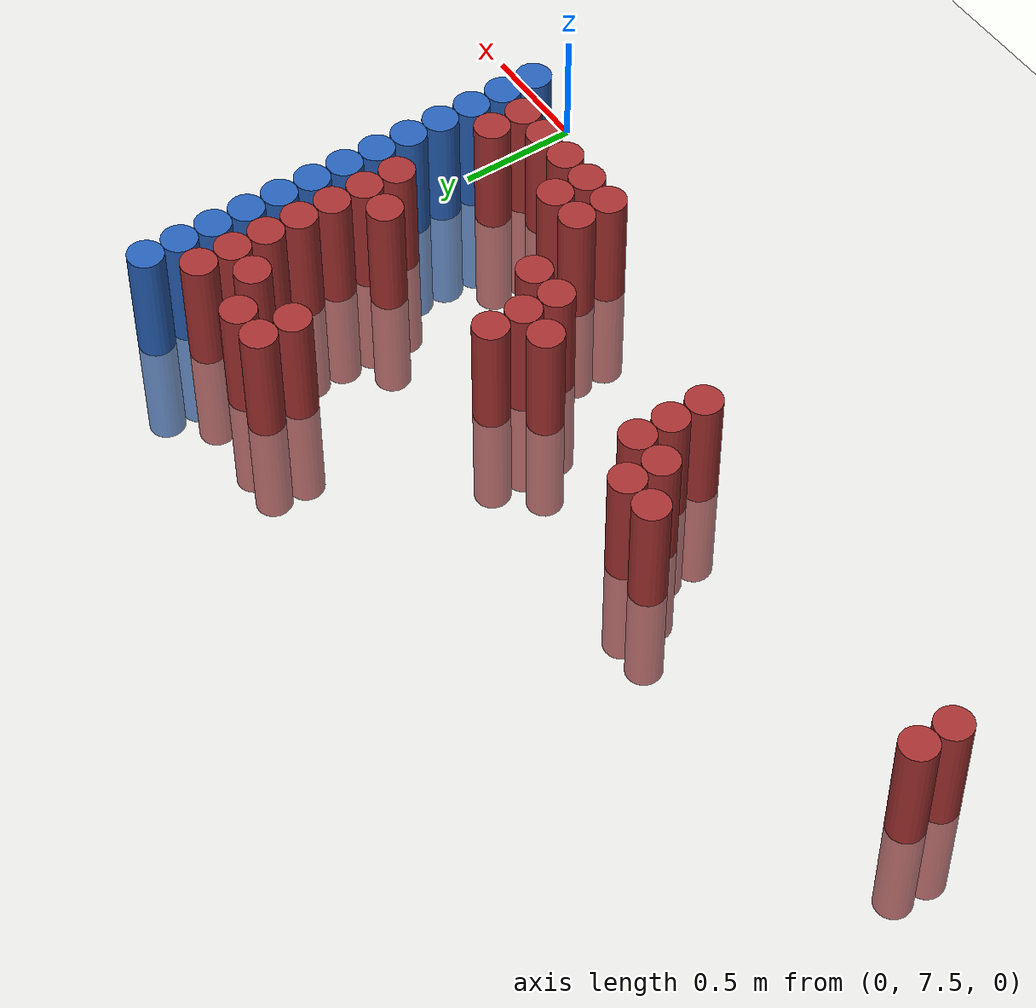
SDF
<sdf version="1.6">
 <world name="default">
  <model name="ground_plane">
   <static>1</static>
   <link name="link">
    <collision name="collision">
     <geometry><plane><normal>0 0 1</normal><size>100 100</size></plane></geometry>
     <surface><friction><ode><mu>100</mu><mu2>50</mu2></ode></friction></surface>
    </collision>
    <visual name="visual">
     <cast_shadows>0</cast_shadows>
     <geometry><plane><normal>0 0 1</normal><size>100 100</size></plane></geometry>
     <material>
      <script><uri>file://media/materials/scripts/gazebo.material</uri><name>Gazebo/Grey</name></script>
     </material>
    </visual>
   </link>
  </model>
  <model name="unit_cylinder_159">
   <static>1</static>
   <pose>-3.525000 8.325000 0.000000 0.000000 0.000000 0.000000</pose>
   <link name="link">
    <inertial>
     <mass>1</mass>
     <inertia><ixx>0.145833</ixx><ixy>0</ixy><ixz>0</ixz><iyy>0.145833</iyy><iyz>0</iyz><izz>0.125</izz></inertia>
    </inertial>
    <collision name="collision">
     <geometry><cylinder><radius>0.075000</radius><length>1</length></cylinder></geometry>
    </collision>
    <visual name="visual">
     <geometry><cylinder><radius>0.075000</radius><length>1</length></cylinder></geometry>
     <material>
      <ambient>0.648000 0.192000 0.192000 1</ambient>
      <diffuse>0.648000 0.192000 0.192000 1</diffuse>
     </material>
     <material>
      <script><name>Gazebo/Grey</name><uri>file://media/materials/scripts/gazebo.material</uri></script>
     </material>
    </visual>
   </link>
  </model>
  <model name="unit_cylinder_160">
   <static>1</static>
   <pose>-3.525000 8.475000 0.000000 0.000000 0.000000 0.000000</pose>
   <link name="link">
    <inertial>
     <mass>1</mass>
     <inertia><ixx>0.145833</ixx><ixy>0</ixy><ixz>0</ixz><iyy>0.145833</iyy><iyz>0</iyz><izz>0.125</izz></inertia>
    </inertial>
    <collision name="collision">
     <geometry><cylinder><radius>0.075000</radius><length>1</length></cylinder></geometry>
    </collision>
    <visual name="visual">
     <geometry><cylinder><radius>0.075000</radius><length>1</length></cylinder></geometry>
     <material>
      <ambient>0.648000 0.192000 0.192000 1</ambient>
      <diffuse>0.648000 0.192000 0.192000 1</diffuse>
     </material>
     <material>
      <script><name>Gazebo/Grey</name><uri>file://media/materials/scripts/gazebo.material</uri></script>
     </material>
    </visual>
   </link>
  </model>
  <model name="unit_cylinder_171">
   <static>1</static>
   <pose>-2.175000 8.625000 0.000000 0.000000 0.000000 0.000000</pose>
   <link name="link">
    <inertial>
     <mass>1</mass>
     <inertia><ixx>0.145833</ixx><ixy>0</ixy><ixz>0</ixz><iyy>0.145833</iyy><iyz>0</iyz><izz>0.125</izz></inertia>
    </inertial>
    <collision name="collision">
     <geometry><cylinder><radius>0.075000</radius><length>1</length></cylinder></geometry>
    </collision>
    <visual name="visual">
     <geometry><cylinder><radius>0.075000</radius><length>1</length></cylinder></geometry>
     <material>
      <ambient>0.648000 0.192000 0.192000 1</ambient>
      <diffuse>0.648000 0.192000 0.192000 1</diffuse>
     </material>
     <material>
      <script><name>Gazebo/Grey</name><uri>file://media/materials/scripts/gazebo.material</uri></script>
     </material>
    </visual>
   </link>
  </model>
  <model name="unit_cylinder_172">
   <static>1</static>
   <pose>-2.025000 8.475000 0.000000 0.000000 0.000000 0.000000</pose>
   <link name="link">
    <inertial>
     <mass>1</mass>
     <inertia><ixx>0.145833</ixx><ixy>0</ixy><ixz>0</ixz><iyy>0.145833</iyy><iyz>0</iyz><izz>0.125</izz></inertia>
    </inertial>
    <collision name="collision">
     <geometry><cylinder><radius>0.075000</radius><length>1</length></cylinder></geometry>
    </collision>
    <visual name="visual">
     <geometry><cylinder><radius>0.075000</radius><length>1</length></cylinder></geometry>
     <material>
      <ambient>0.648000 0.192000 0.192000 1</ambient>
      <diffuse>0.648000 0.192000 0.192000 1</diffuse>
     </material>
     <material>
      <script><name>Gazebo/Grey</name><uri>file://media/materials/scripts/gazebo.material</uri></script>
     </material>
    </visual>
   </link>
  </model>
  <model name="unit_cylinder_173">
   <static>1</static>
   <pose>-2.025000 8.625000 0.000000 0.000000 0.000000 0.000000</pose>
   <link name="link">
    <inertial>
     <mass>1</mass>
     <inertia><ixx>0.145833</ixx><ixy>0</ixy><ixz>0</ixz><iyy>0.145833</iyy><iyz>0</iyz><izz>0.125</izz></inertia>
    </inertial>
    <collision name="collision">
     <geometry><cylinder><radius>0.075000</radius><length>1</length></cylinder></geometry>
    </collision>
    <visual name="visual">
     <geometry><cylinder><radius>0.075000</radius><length>1</length></cylinder></geometry>
     <material>
      <ambient>0.648000 0.192000 0.192000 1</ambient>
      <diffuse>0.648000 0.192000 0.192000 1</diffuse>
     </material>
     <material>
      <script><name>Gazebo/Grey</name><uri>file://media/materials/scripts/gazebo.material</uri></script>
     </material>
    </visual>
   </link>
  </model>
  <model name="unit_cylinder_174">
   <static>1</static>
   <pose>-1.875000 8.175000 0.000000 0.000000 0.000000 0.000000</pose>
   <link name="link">
    <inertial>
     <mass>1</mass>
     <inertia><ixx>0.145833</ixx><ixy>0</ixy><ixz>0</ixz><iyy>0.145833</iyy><iyz>0</iyz><izz>0.125</izz></inertia>
    </inertial>
    <collision name="collision">
     <geometry><cylinder><radius>0.075000</radius><length>1</length></cylinder></geometry>
    </collision>
    <visual name="visual">
     <geometry><cylinder><radius>0.075000</radius><length>1</length></cylinder></geometry>
     <material>
      <ambient>0.648000 0.192000 0.192000 1</ambient>
      <diffuse>0.648000 0.192000 0.192000 1</diffuse>
     </material>
     <material>
      <script><name>Gazebo/Grey</name><uri>file://media/materials/scripts/gazebo.material</uri></script>
     </material>
    </visual>
   </link>
  </model>
  <model name="unit_cylinder_175">
   <static>1</static>
   <pose>-1.875000 8.325000 0.000000 0.000000 0.000000 0.000000</pose>
   <link name="link">
    <inertial>
     <mass>1</mass>
     <inertia><ixx>0.145833</ixx><ixy>0</ixy><ixz>0</ixz><iyy>0.145833</iyy><iyz>0</iyz><izz>0.125</izz></inertia>
    </inertial>
    <collision name="collision">
     <geometry><cylinder><radius>0.075000</radius><length>1</length></cylinder></geometry>
    </collision>
    <visual name="visual">
     <geometry><cylinder><radius>0.075000</radius><length>1</length></cylinder></geometry>
     <material>
      <ambient>0.648000 0.192000 0.192000 1</ambient>
      <diffuse>0.648000 0.192000 0.192000 1</diffuse>
     </material>
     <material>
      <script><name>Gazebo/Grey</name><uri>file://media/materials/scripts/gazebo.material</uri></script>
     </material>
    </visual>
   </link>
  </model>
  <model name="unit_cylinder_176">
   <static>1</static>
   <pose>-1.875000 8.475000 0.000000 0.000000 0.000000 0.000000</pose>
   <link name="link">
    <inertial>
     <mass>1</mass>
     <inertia><ixx>0.145833</ixx><ixy>0</ixy><ixz>0</ixz><iyy>0.145833</iyy><iyz>0</iyz><izz>0.125</izz></inertia>
    </inertial>
    <collision name="collision">
     <geometry><cylinder><radius>0.075000</radius><length>1</length></cylinder></geometry>
    </collision>
    <visual name="visual">
     <geometry><cylinder><radius>0.075000</radius><length>1</length></cylinder></geometry>
     <material>
      <ambient>0.648000 0.192000 0.192000 1</ambient>
      <diffuse>0.648000 0.192000 0.192000 1</diffuse>
     </material>
     <material>
      <script><name>Gazebo/Grey</name><uri>file://media/materials/scripts/gazebo.material</uri></script>
     </material>
    </visual>
   </link>
  </model>
  <model name="unit_cylinder_195">
   <static>1</static>
   <pose>-1.275000 8.475000 0.000000 0.000000 0.000000 0.000000</pose>
   <link name="link">
    <inertial>
     <mass>1</mass>
     <inertia><ixx>0.145833</ixx><ixy>0</ixy><ixz>0</ixz><iyy>0.145833</iyy><iyz>0</iyz><izz>0.125</izz></inertia>
    </inertial>
    <collision name="collision">
     <geometry><cylinder><radius>0.075000</radius><length>1</length></cylinder></geometry>
    </collision>
    <visual name="visual">
     <geometry><cylinder><radius>0.075000</radius><length>1</length></cylinder></geometry>
     <material>
      <ambient>0.648000 0.192000 0.192000 1</ambient>
      <diffuse>0.648000 0.192000 0.192000 1</diffuse>
     </material>
     <material>
      <script><name>Gazebo/Grey</name><uri>file://media/materials/scripts/gazebo.material</uri></script>
     </material>
    </visual>
   </link>
  </model>
  <model name="unit_cylinder_196">
   <static>1</static>
   <pose>-1.125000 8.325000 0.000000 0.000000 0.000000 0.000000</pose>
   <link name="link">
    <inertial>
     <mass>1</mass>
     <inertia><ixx>0.145833</ixx><ixy>0</ixy><ixz>0</ixz><iyy>0.145833</iyy><iyz>0</iyz><izz>0.125</izz></inertia>
    </inertial>
    <collision name="collision">
     <geometry><cylinder><radius>0.075000</radius><length>1</length></cylinder></geometry>
    </collision>
    <visual name="visual">
     <geometry><cylinder><radius>0.075000</radius><length>1</length></cylinder></geometry>
     <material>
      <ambient>0.648000 0.192000 0.192000 1</ambient>
      <diffuse>0.648000 0.192000 0.192000 1</diffuse>
     </material>
     <material>
      <script><name>Gazebo/Grey</name><uri>file://media/materials/scripts/gazebo.material</uri></script>
     </material>
    </visual>
   </link>
  </model>
  <model name="unit_cylinder_197">
   <static>1</static>
   <pose>-1.125000 8.475000 0.000000 0.000000 0.000000 0.000000</pose>
   <link name="link">
    <inertial>
     <mass>1</mass>
     <inertia><ixx>0.145833</ixx><ixy>0</ixy><ixz>0</ixz><iyy>0.145833</iyy><iyz>0</iyz><izz>0.125</izz></inertia>
    </inertial>
    <collision name="collision">
     <geometry><cylinder><radius>0.075000</radius><length>1</length></cylinder></geometry>
    </collision>
    <visual name="visual">
     <geometry><cylinder><radius>0.075000</radius><length>1</length></cylinder></geometry>
     <material>
      <ambient>0.648000 0.192000 0.192000 1</ambient>
      <diffuse>0.648000 0.192000 0.192000 1</diffuse>
     </material>
     <material>
      <script><name>Gazebo/Grey</name><uri>file://media/materials/scripts/gazebo.material</uri></script>
     </material>
    </visual>
   </link>
  </model>
  <model name="unit_cylinder_198">
   <static>1</static>
   <pose>-1.125000 8.625000 0.000000 0.000000 0.000000 0.000000</pose>
   <link name="link">
    <inertial>
     <mass>1</mass>
     <inertia><ixx>0.145833</ixx><ixy>0</ixy><ixz>0</ixz><iyy>0.145833</iyy><iyz>0</iyz><izz>0.125</izz></inertia>
    </inertial>
    <collision name="collision">
     <geometry><cylinder><radius>0.075000</radius><length>1</length></cylinder></geometry>
    </collision>
    <visual name="visual">
     <geometry><cylinder><radius>0.075000</radius><length>1</length></cylinder></geometry>
     <material>
      <ambient>0.648000 0.192000 0.192000 1</ambient>
      <diffuse>0.648000 0.192000 0.192000 1</diffuse>
     </material>
     <material>
      <script><name>Gazebo/Grey</name><uri>file://media/materials/scripts/gazebo.material</uri></script>
     </material>
    </visual>
   </link>
  </model>
  <model name="unit_cylinder_201">
   <static>1</static>
   <pose>-0.975000 8.325000 0.000000 0.000000 0.000000 0.000000</pose>
   <link name="link">
    <inertial>
     <mass>1</mass>
     <inertia><ixx>0.145833</ixx><ixy>0</ixy><ixz>0</ixz><iyy>0.145833</iyy><iyz>0</iyz><izz>0.125</izz></inertia>
    </inertial>
    <collision name="collision">
     <geometry><cylinder><radius>0.075000</radius><length>1</length></cylinder></geometry>
    </collision>
    <visual name="visual">
     <geometry><cylinder><radius>0.075000</radius><length>1</length></cylinder></geometry>
     <material>
      <ambient>0.648000 0.192000 0.192000 1</ambient>
      <diffuse>0.648000 0.192000 0.192000 1</diffuse>
     </material>
     <material>
      <script><name>Gazebo/Grey</name><uri>file://media/materials/scripts/gazebo.material</uri></script>
     </material>
    </visual>
   </link>
  </model>
  <model name="unit_cylinder_204">
   <static>1</static>
   <pose>-0.825000 7.875000 0.000000 0.000000 0.000000 0.000000</pose>
   <link name="link">
    <inertial>
     <mass>1</mass>
     <inertia><ixx>0.145833</ixx><ixy>0</ixy><ixz>0</ixz><iyy>0.145833</iyy><iyz>0</iyz><izz>0.125</izz></inertia>
    </inertial>
    <collision name="collision">
     <geometry><cylinder><radius>0.075000</radius><length>1</length></cylinder></geometry>
    </collision>
    <visual name="visual">
     <geometry><cylinder><radius>0.075000</radius><length>1</length></cylinder></geometry>
     <material>
      <ambient>0.648000 0.192000 0.192000 1</ambient>
      <diffuse>0.648000 0.192000 0.192000 1</diffuse>
     </material>
     <material>
      <script><name>Gazebo/Grey</name><uri>file://media/materials/scripts/gazebo.material</uri></script>
     </material>
    </visual>
   </link>
  </model>
  <model name="unit_cylinder_205">
   <static>1</static>
   <pose>-0.825000 8.025000 0.000000 0.000000 0.000000 0.000000</pose>
   <link name="link">
    <inertial>
     <mass>1</mass>
     <inertia><ixx>0.145833</ixx><ixy>0</ixy><ixz>0</ixz><iyy>0.145833</iyy><iyz>0</iyz><izz>0.125</izz></inertia>
    </inertial>
    <collision name="collision">
     <geometry><cylinder><radius>0.075000</radius><length>1</length></cylinder></geometry>
    </collision>
    <visual name="visual">
     <geometry><cylinder><radius>0.075000</radius><length>1</length></cylinder></geometry>
     <material>
      <ambient>0.648000 0.192000 0.192000 1</ambient>
      <diffuse>0.648000 0.192000 0.192000 1</diffuse>
     </material>
     <material>
      <script><name>Gazebo/Grey</name><uri>file://media/materials/scripts/gazebo.material</uri></script>
     </material>
    </visual>
   </link>
  </model>
  <model name="unit_cylinder_209">
   <static>1</static>
   <pose>-0.675000 7.875000 0.000000 0.000000 0.000000 0.000000</pose>
   <link name="link">
    <inertial>
     <mass>1</mass>
     <inertia><ixx>0.145833</ixx><ixy>0</ixy><ixz>0</ixz><iyy>0.145833</iyy><iyz>0</iyz><izz>0.125</izz></inertia>
    </inertial>
    <collision name="collision">
     <geometry><cylinder><radius>0.075000</radius><length>1</length></cylinder></geometry>
    </collision>
    <visual name="visual">
     <geometry><cylinder><radius>0.075000</radius><length>1</length></cylinder></geometry>
     <material>
      <ambient>0.648000 0.192000 0.192000 1</ambient>
      <diffuse>0.648000 0.192000 0.192000 1</diffuse>
     </material>
     <material>
      <script><name>Gazebo/Grey</name><uri>file://media/materials/scripts/gazebo.material</uri></script>
     </material>
    </visual>
   </link>
  </model>
  <model name="unit_cylinder_210">
   <static>1</static>
   <pose>-0.675000 8.025000 0.000000 0.000000 0.000000 0.000000</pose>
   <link name="link">
    <inertial>
     <mass>1</mass>
     <inertia><ixx>0.145833</ixx><ixy>0</ixy><ixz>0</ixz><iyy>0.145833</iyy><iyz>0</iyz><izz>0.125</izz></inertia>
    </inertial>
    <collision name="collision">
     <geometry><cylinder><radius>0.075000</radius><length>1</length></cylinder></geometry>
    </collision>
    <visual name="visual">
     <geometry><cylinder><radius>0.075000</radius><length>1</length></cylinder></geometry>
     <material>
      <ambient>0.648000 0.192000 0.192000 1</ambient>
      <diffuse>0.648000 0.192000 0.192000 1</diffuse>
     </material>
     <material>
      <script><name>Gazebo/Grey</name><uri>file://media/materials/scripts/gazebo.material</uri></script>
     </material>
    </visual>
   </link>
  </model>
  <model name="unit_cylinder_211">
   <static>1</static>
   <pose>-0.675000 9.225000 0.000000 0.000000 0.000000 0.000000</pose>
   <link name="link">
    <inertial>
     <mass>1</mass>
     <inertia><ixx>0.145833</ixx><ixy>0</ixy><ixz>0</ixz><iyy>0.145833</iyy><iyz>0</iyz><izz>0.125</izz></inertia>
    </inertial>
    <collision name="collision">
     <geometry><cylinder><radius>0.075000</radius><length>1</length></cylinder></geometry>
    </collision>
    <visual name="visual">
     <geometry><cylinder><radius>0.075000</radius><length>1</length></cylinder></geometry>
     <material>
      <ambient>0.648000 0.192000 0.192000 1</ambient>
      <diffuse>0.648000 0.192000 0.192000 1</diffuse>
     </material>
     <material>
      <script><name>Gazebo/Grey</name><uri>file://media/materials/scripts/gazebo.material</uri></script>
     </material>
    </visual>
   </link>
  </model>
  <model name="unit_cylinder_212">
   <static>1</static>
   <pose>-0.675000 9.375000 0.000000 0.000000 0.000000 0.000000</pose>
   <link name="link">
    <inertial>
     <mass>1</mass>
     <inertia><ixx>0.145833</ixx><ixy>0</ixy><ixz>0</ixz><iyy>0.145833</iyy><iyz>0</iyz><izz>0.125</izz></inertia>
    </inertial>
    <collision name="collision">
     <geometry><cylinder><radius>0.075000</radius><length>1</length></cylinder></geometry>
    </collision>
    <visual name="visual">
     <geometry><cylinder><radius>0.075000</radius><length>1</length></cylinder></geometry>
     <material>
      <ambient>0.648000 0.192000 0.192000 1</ambient>
      <diffuse>0.648000 0.192000 0.192000 1</diffuse>
     </material>
     <material>
      <script><name>Gazebo/Grey</name><uri>file://media/materials/scripts/gazebo.material</uri></script>
     </material>
    </visual>
   </link>
  </model>
  <model name="unit_cylinder_217">
   <static>1</static>
   <pose>-0.525000 7.875000 0.000000 0.000000 0.000000 0.000000</pose>
   <link name="link">
    <inertial>
     <mass>1</mass>
     <inertia><ixx>0.145833</ixx><ixy>0</ixy><ixz>0</ixz><iyy>0.145833</iyy><iyz>0</iyz><izz>0.125</izz></inertia>
    </inertial>
    <collision name="collision">
     <geometry><cylinder><radius>0.075000</radius><length>1</length></cylinder></geometry>
    </collision>
    <visual name="visual">
     <geometry><cylinder><radius>0.075000</radius><length>1</length></cylinder></geometry>
     <material>
      <ambient>0.648000 0.192000 0.192000 1</ambient>
      <diffuse>0.648000 0.192000 0.192000 1</diffuse>
     </material>
     <material>
      <script><name>Gazebo/Grey</name><uri>file://media/materials/scripts/gazebo.material</uri></script>
     </material>
    </visual>
   </link>
  </model>
  <model name="unit_cylinder_218">
   <static>1</static>
   <pose>-0.525000 9.375000 0.000000 0.000000 0.000000 0.000000</pose>
   <link name="link">
    <inertial>
     <mass>1</mass>
     <inertia><ixx>0.145833</ixx><ixy>0</ixy><ixz>0</ixz><iyy>0.145833</iyy><iyz>0</iyz><izz>0.125</izz></inertia>
    </inertial>
    <collision name="collision">
     <geometry><cylinder><radius>0.075000</radius><length>1</length></cylinder></geometry>
    </collision>
    <visual name="visual">
     <geometry><cylinder><radius>0.075000</radius><length>1</length></cylinder></geometry>
     <material>
      <ambient>0.648000 0.192000 0.192000 1</ambient>
      <diffuse>0.648000 0.192000 0.192000 1</diffuse>
     </material>
     <material>
      <script><name>Gazebo/Grey</name><uri>file://media/materials/scripts/gazebo.material</uri></script>
     </material>
    </visual>
   </link>
  </model>
  <model name="unit_cylinder_225">
   <static>1</static>
   <pose>-0.375000 7.875000 0.000000 0.000000 0.000000 0.000000</pose>
   <link name="link">
    <inertial>
     <mass>1</mass>
     <inertia><ixx>0.145833</ixx><ixy>0</ixy><ixz>0</ixz><iyy>0.145833</iyy><iyz>0</iyz><izz>0.125</izz></inertia>
    </inertial>
    <collision name="collision">
     <geometry><cylinder><radius>0.075000</radius><length>1</length></cylinder></geometry>
    </collision>
    <visual name="visual">
     <geometry><cylinder><radius>0.075000</radius><length>1</length></cylinder></geometry>
     <material>
      <ambient>0.648000 0.192000 0.192000 1</ambient>
      <diffuse>0.648000 0.192000 0.192000 1</diffuse>
     </material>
     <material>
      <script><name>Gazebo/Grey</name><uri>file://media/materials/scripts/gazebo.material</uri></script>
     </material>
    </visual>
   </link>
  </model>
  <model name="unit_cylinder_226">
   <static>1</static>
   <pose>-0.375000 8.625000 0.000000 0.000000 0.000000 0.000000</pose>
   <link name="link">
    <inertial>
     <mass>1</mass>
     <inertia><ixx>0.145833</ixx><ixy>0</ixy><ixz>0</ixz><iyy>0.145833</iyy><iyz>0</iyz><izz>0.125</izz></inertia>
    </inertial>
    <collision name="collision">
     <geometry><cylinder><radius>0.075000</radius><length>1</length></cylinder></geometry>
    </collision>
    <visual name="visual">
     <geometry><cylinder><radius>0.075000</radius><length>1</length></cylinder></geometry>
     <material>
      <ambient>0.648000 0.192000 0.192000 1</ambient>
      <diffuse>0.648000 0.192000 0.192000 1</diffuse>
     </material>
     <material>
      <script><name>Gazebo/Grey</name><uri>file://media/materials/scripts/gazebo.material</uri></script>
     </material>
    </visual>
   </link>
  </model>
  <model name="unit_cylinder_227">
   <static>1</static>
   <pose>-0.375000 9.225000 0.000000 0.000000 0.000000 0.000000</pose>
   <link name="link">
    <inertial>
     <mass>1</mass>
     <inertia><ixx>0.145833</ixx><ixy>0</ixy><ixz>0</ixz><iyy>0.145833</iyy><iyz>0</iyz><izz>0.125</izz></inertia>
    </inertial>
    <collision name="collision">
     <geometry><cylinder><radius>0.075000</radius><length>1</length></cylinder></geometry>
    </collision>
    <visual name="visual">
     <geometry><cylinder><radius>0.075000</radius><length>1</length></cylinder></geometry>
     <material>
      <ambient>0.648000 0.192000 0.192000 1</ambient>
      <diffuse>0.648000 0.192000 0.192000 1</diffuse>
     </material>
     <material>
      <script><name>Gazebo/Grey</name><uri>file://media/materials/scripts/gazebo.material</uri></script>
     </material>
    </visual>
   </link>
  </model>
  <model name="unit_cylinder_236">
   <static>1</static>
   <pose>-0.225000 7.875000 0.000000 0.000000 0.000000 0.000000</pose>
   <link name="link">
    <inertial>
     <mass>1</mass>
     <inertia><ixx>0.145833</ixx><ixy>0</ixy><ixz>0</ixz><iyy>0.145833</iyy><iyz>0</iyz><izz>0.125</izz></inertia>
    </inertial>
    <collision name="collision">
     <geometry><cylinder><radius>0.075000</radius><length>1</length></cylinder></geometry>
    </collision>
    <visual name="visual">
     <geometry><cylinder><radius>0.075000</radius><length>1</length></cylinder></geometry>
     <material>
      <ambient>0.648000 0.192000 0.192000 1</ambient>
      <diffuse>0.648000 0.192000 0.192000 1</diffuse>
     </material>
     <material>
      <script><name>Gazebo/Grey</name><uri>file://media/materials/scripts/gazebo.material</uri></script>
     </material>
    </visual>
   </link>
  </model>
  <model name="unit_cylinder_237">
   <static>1</static>
   <pose>-0.225000 8.025000 0.000000 0.000000 0.000000 0.000000</pose>
   <link name="link">
    <inertial>
     <mass>1</mass>
     <inertia><ixx>0.145833</ixx><ixy>0</ixy><ixz>0</ixz><iyy>0.145833</iyy><iyz>0</iyz><izz>0.125</izz></inertia>
    </inertial>
    <collision name="collision">
     <geometry><cylinder><radius>0.075000</radius><length>1</length></cylinder></geometry>
    </collision>
    <visual name="visual">
     <geometry><cylinder><radius>0.075000</radius><length>1</length></cylinder></geometry>
     <material>
      <ambient>0.648000 0.192000 0.192000 1</ambient>
      <diffuse>0.648000 0.192000 0.192000 1</diffuse>
     </material>
     <material>
      <script><name>Gazebo/Grey</name><uri>file://media/materials/scripts/gazebo.material</uri></script>
     </material>
    </visual>
   </link>
  </model>
  <model name="unit_cylinder_238">
   <static>1</static>
   <pose>-0.225000 8.475000 0.000000 0.000000 0.000000 0.000000</pose>
   <link name="link">
    <inertial>
     <mass>1</mass>
     <inertia><ixx>0.145833</ixx><ixy>0</ixy><ixz>0</ixz><iyy>0.145833</iyy><iyz>0</iyz><izz>0.125</izz></inertia>
    </inertial>
    <collision name="collision">
     <geometry><cylinder><radius>0.075000</radius><length>1</length></cylinder></geometry>
    </collision>
    <visual name="visual">
     <geometry><cylinder><radius>0.075000</radius><length>1</length></cylinder></geometry>
     <material>
      <ambient>0.648000 0.192000 0.192000 1</ambient>
      <diffuse>0.648000 0.192000 0.192000 1</diffuse>
     </material>
     <material>
      <script><name>Gazebo/Grey</name><uri>file://media/materials/scripts/gazebo.material</uri></script>
     </material>
    </visual>
   </link>
  </model>
  <model name="unit_cylinder_239">
   <static>1</static>
   <pose>-0.225000 8.625000 0.000000 0.000000 0.000000 0.000000</pose>
   <link name="link">
    <inertial>
     <mass>1</mass>
     <inertia><ixx>0.145833</ixx><ixy>0</ixy><ixz>0</ixz><iyy>0.145833</iyy><iyz>0</iyz><izz>0.125</izz></inertia>
    </inertial>
    <collision name="collision">
     <geometry><cylinder><radius>0.075000</radius><length>1</length></cylinder></geometry>
    </collision>
    <visual name="visual">
     <geometry><cylinder><radius>0.075000</radius><length>1</length></cylinder></geometry>
     <material>
      <ambient>0.648000 0.192000 0.192000 1</ambient>
      <diffuse>0.648000 0.192000 0.192000 1</diffuse>
     </material>
     <material>
      <script><name>Gazebo/Grey</name><uri>file://media/materials/scripts/gazebo.material</uri></script>
     </material>
    </visual>
   </link>
  </model>
  <model name="unit_cylinder_240">
   <static>1</static>
   <pose>-0.225000 8.775000 0.000000 0.000000 0.000000 0.000000</pose>
   <link name="link">
    <inertial>
     <mass>1</mass>
     <inertia><ixx>0.145833</ixx><ixy>0</ixy><ixz>0</ixz><iyy>0.145833</iyy><iyz>0</iyz><izz>0.125</izz></inertia>
    </inertial>
    <collision name="collision">
     <geometry><cylinder><radius>0.075000</radius><length>1</length></cylinder></geometry>
    </collision>
    <visual name="visual">
     <geometry><cylinder><radius>0.075000</radius><length>1</length></cylinder></geometry>
     <material>
      <ambient>0.648000 0.192000 0.192000 1</ambient>
      <diffuse>0.648000 0.192000 0.192000 1</diffuse>
     </material>
     <material>
      <script><name>Gazebo/Grey</name><uri>file://media/materials/scripts/gazebo.material</uri></script>
     </material>
    </visual>
   </link>
  </model>
  <model name="unit_cylinder_241">
   <static>1</static>
   <pose>-0.225000 8.925000 0.000000 0.000000 0.000000 0.000000</pose>
   <link name="link">
    <inertial>
     <mass>1</mass>
     <inertia><ixx>0.145833</ixx><ixy>0</ixy><ixz>0</ixz><iyy>0.145833</iyy><iyz>0</iyz><izz>0.125</izz></inertia>
    </inertial>
    <collision name="collision">
     <geometry><cylinder><radius>0.075000</radius><length>1</length></cylinder></geometry>
    </collision>
    <visual name="visual">
     <geometry><cylinder><radius>0.075000</radius><length>1</length></cylinder></geometry>
     <material>
      <ambient>0.648000 0.192000 0.192000 1</ambient>
      <diffuse>0.648000 0.192000 0.192000 1</diffuse>
     </material>
     <material>
      <script><name>Gazebo/Grey</name><uri>file://media/materials/scripts/gazebo.material</uri></script>
     </material>
    </visual>
   </link>
  </model>
  <model name="unit_cylinder_242">
   <static>1</static>
   <pose>-0.225000 9.075000 0.000000 0.000000 0.000000 0.000000</pose>
   <link name="link">
    <inertial>
     <mass>1</mass>
     <inertia><ixx>0.145833</ixx><ixy>0</ixy><ixz>0</ixz><iyy>0.145833</iyy><iyz>0</iyz><izz>0.125</izz></inertia>
    </inertial>
    <collision name="collision">
     <geometry><cylinder><radius>0.075000</radius><length>1</length></cylinder></geometry>
    </collision>
    <visual name="visual">
     <geometry><cylinder><radius>0.075000</radius><length>1</length></cylinder></geometry>
     <material>
      <ambient>0.648000 0.192000 0.192000 1</ambient>
      <diffuse>0.648000 0.192000 0.192000 1</diffuse>
     </material>
     <material>
      <script><name>Gazebo/Grey</name><uri>file://media/materials/scripts/gazebo.material</uri></script>
     </material>
    </visual>
   </link>
  </model>
  <model name="unit_cylinder_243">
   <static>1</static>
   <pose>-0.225000 9.225000 0.000000 0.000000 0.000000 0.000000</pose>
   <link name="link">
    <inertial>
     <mass>1</mass>
     <inertia><ixx>0.145833</ixx><ixy>0</ixy><ixz>0</ixz><iyy>0.145833</iyy><iyz>0</iyz><izz>0.125</izz></inertia>
    </inertial>
    <collision name="collision">
     <geometry><cylinder><radius>0.075000</radius><length>1</length></cylinder></geometry>
    </collision>
    <visual name="visual">
     <geometry><cylinder><radius>0.075000</radius><length>1</length></cylinder></geometry>
     <material>
      <ambient>0.648000 0.192000 0.192000 1</ambient>
      <diffuse>0.648000 0.192000 0.192000 1</diffuse>
     </material>
     <material>
      <script><name>Gazebo/Grey</name><uri>file://media/materials/scripts/gazebo.material</uri></script>
     </material>
    </visual>
   </link>
  </model>
  <model name="unit_cylinder_244">
   <static>1</static>
   <pose>-0.225000 9.375000 0.000000 0.000000 0.000000 0.000000</pose>
   <link name="link">
    <inertial>
     <mass>1</mass>
     <inertia><ixx>0.145833</ixx><ixy>0</ixy><ixz>0</ixz><iyy>0.145833</iyy><iyz>0</iyz><izz>0.125</izz></inertia>
    </inertial>
    <collision name="collision">
     <geometry><cylinder><radius>0.075000</radius><length>1</length></cylinder></geometry>
    </collision>
    <visual name="visual">
     <geometry><cylinder><radius>0.075000</radius><length>1</length></cylinder></geometry>
     <material>
      <ambient>0.648000 0.192000 0.192000 1</ambient>
      <diffuse>0.648000 0.192000 0.192000 1</diffuse>
     </material>
     <material>
      <script><name>Gazebo/Grey</name><uri>file://media/materials/scripts/gazebo.material</uri></script>
     </material>
    </visual>
   </link>
  </model>
  <model name="unit_cylinder_262">
   <static>1</static>
   <pose>-0.075000 7.725000 0.000000 0.000000 0.000000 0.000000</pose>
   <link name="link">
    <inertial>
     <mass>1</mass>
     <inertia><ixx>0.145833</ixx><ixy>0</ixy><ixz>0</ixz><iyy>0.145833</iyy><iyz>0</iyz><izz>0.125</izz></inertia>
    </inertial>
    <collision name="collision">
     <geometry><cylinder><radius>0.075000</radius><length>1</length></cylinder></geometry>
    </collision>
    <visual name="visual">
     <geometry><cylinder><radius>0.075000</radius><length>1</length></cylinder></geometry>
     <material>
      <ambient>0.152000 0.379000 0.720000 1</ambient>
      <diffuse>0.152000 0.379000 0.720000 1</diffuse>
     </material>
     <material>
      <script><name>Gazebo/Grey</name><uri>file://media/materials/scripts/gazebo.material</uri></script>
     </material>
    </visual>
   </link>
  </model>
  <model name="unit_cylinder_263">
   <static>1</static>
   <pose>-0.075000 7.875000 0.000000 0.000000 0.000000 0.000000</pose>
   <link name="link">
    <inertial>
     <mass>1</mass>
     <inertia><ixx>0.145833</ixx><ixy>0</ixy><ixz>0</ixz><iyy>0.145833</iyy><iyz>0</iyz><izz>0.125</izz></inertia>
    </inertial>
    <collision name="collision">
     <geometry><cylinder><radius>0.075000</radius><length>1</length></cylinder></geometry>
    </collision>
    <visual name="visual">
     <geometry><cylinder><radius>0.075000</radius><length>1</length></cylinder></geometry>
     <material>
      <ambient>0.152000 0.379000 0.720000 1</ambient>
      <diffuse>0.152000 0.379000 0.720000 1</diffuse>
     </material>
     <material>
      <script><name>Gazebo/Grey</name><uri>file://media/materials/scripts/gazebo.material</uri></script>
     </material>
    </visual>
   </link>
  </model>
  <model name="unit_cylinder_264">
   <static>1</static>
   <pose>-0.075000 8.025000 0.000000 0.000000 0.000000 0.000000</pose>
   <link name="link">
    <inertial>
     <mass>1</mass>
     <inertia><ixx>0.145833</ixx><ixy>0</ixy><ixz>0</ixz><iyy>0.145833</iyy><iyz>0</iyz><izz>0.125</izz></inertia>
    </inertial>
    <collision name="collision">
     <geometry><cylinder><radius>0.075000</radius><length>1</length></cylinder></geometry>
    </collision>
    <visual name="visual">
     <geometry><cylinder><radius>0.075000</radius><length>1</length></cylinder></geometry>
     <material>
      <ambient>0.152000 0.379000 0.720000 1</ambient>
      <diffuse>0.152000 0.379000 0.720000 1</diffuse>
     </material>
     <material>
      <script><name>Gazebo/Grey</name><uri>file://media/materials/scripts/gazebo.material</uri></script>
     </material>
    </visual>
   </link>
  </model>
  <model name="unit_cylinder_265">
   <static>1</static>
   <pose>-0.075000 8.175000 0.000000 0.000000 0.000000 0.000000</pose>
   <link name="link">
    <inertial>
     <mass>1</mass>
     <inertia><ixx>0.145833</ixx><ixy>0</ixy><ixz>0</ixz><iyy>0.145833</iyy><iyz>0</iyz><izz>0.125</izz></inertia>
    </inertial>
    <collision name="collision">
     <geometry><cylinder><radius>0.075000</radius><length>1</length></cylinder></geometry>
    </collision>
    <visual name="visual">
     <geometry><cylinder><radius>0.075000</radius><length>1</length></cylinder></geometry>
     <material>
      <ambient>0.152000 0.379000 0.720000 1</ambient>
      <diffuse>0.152000 0.379000 0.720000 1</diffuse>
     </material>
     <material>
      <script><name>Gazebo/Grey</name><uri>file://media/materials/scripts/gazebo.material</uri></script>
     </material>
    </visual>
   </link>
  </model>
  <model name="unit_cylinder_266">
   <static>1</static>
   <pose>-0.075000 8.325000 0.000000 0.000000 0.000000 0.000000</pose>
   <link name="link">
    <inertial>
     <mass>1</mass>
     <inertia><ixx>0.145833</ixx><ixy>0</ixy><ixz>0</ixz><iyy>0.145833</iyy><iyz>0</iyz><izz>0.125</izz></inertia>
    </inertial>
    <collision name="collision">
     <geometry><cylinder><radius>0.075000</radius><length>1</length></cylinder></geometry>
    </collision>
    <visual name="visual">
     <geometry><cylinder><radius>0.075000</radius><length>1</length></cylinder></geometry>
     <material>
      <ambient>0.152000 0.379000 0.720000 1</ambient>
      <diffuse>0.152000 0.379000 0.720000 1</diffuse>
     </material>
     <material>
      <script><name>Gazebo/Grey</name><uri>file://media/materials/scripts/gazebo.material</uri></script>
     </material>
    </visual>
   </link>
  </model>
  <model name="unit_cylinder_267">
   <static>1</static>
   <pose>-0.075000 8.475000 0.000000 0.000000 0.000000 0.000000</pose>
   <link name="link">
    <inertial>
     <mass>1</mass>
     <inertia><ixx>0.145833</ixx><ixy>0</ixy><ixz>0</ixz><iyy>0.145833</iyy><iyz>0</iyz><izz>0.125</izz></inertia>
    </inertial>
    <collision name="collision">
     <geometry><cylinder><radius>0.075000</radius><length>1</length></cylinder></geometry>
    </collision>
    <visual name="visual">
     <geometry><cylinder><radius>0.075000</radius><length>1</length></cylinder></geometry>
     <material>
      <ambient>0.152000 0.379000 0.720000 1</ambient>
      <diffuse>0.152000 0.379000 0.720000 1</diffuse>
     </material>
     <material>
      <script><name>Gazebo/Grey</name><uri>file://media/materials/scripts/gazebo.material</uri></script>
     </material>
    </visual>
   </link>
  </model>
  <model name="unit_cylinder_268">
   <static>1</static>
   <pose>-0.075000 8.625000 0.000000 0.000000 0.000000 0.000000</pose>
   <link name="link">
    <inertial>
     <mass>1</mass>
     <inertia><ixx>0.145833</ixx><ixy>0</ixy><ixz>0</ixz><iyy>0.145833</iyy><iyz>0</iyz><izz>0.125</izz></inertia>
    </inertial>
    <collision name="collision">
     <geometry><cylinder><radius>0.075000</radius><length>1</length></cylinder></geometry>
    </collision>
    <visual name="visual">
     <geometry><cylinder><radius>0.075000</radius><length>1</length></cylinder></geometry>
     <material>
      <ambient>0.152000 0.379000 0.720000 1</ambient>
      <diffuse>0.152000 0.379000 0.720000 1</diffuse>
     </material>
     <material>
      <script><name>Gazebo/Grey</name><uri>file://media/materials/scripts/gazebo.material</uri></script>
     </material>
    </visual>
   </link>
  </model>
  <model name="unit_cylinder_269">
   <static>1</static>
   <pose>-0.075000 8.775000 0.000000 0.000000 0.000000 0.000000</pose>
   <link name="link">
    <inertial>
     <mass>1</mass>
     <inertia><ixx>0.145833</ixx><ixy>0</ixy><ixz>0</ixz><iyy>0.145833</iyy><iyz>0</iyz><izz>0.125</izz></inertia>
    </inertial>
    <collision name="collision">
     <geometry><cylinder><radius>0.075000</radius><length>1</length></cylinder></geometry>
    </collision>
    <visual name="visual">
     <geometry><cylinder><radius>0.075000</radius><length>1</length></cylinder></geometry>
     <material>
      <ambient>0.152000 0.379000 0.720000 1</ambient>
      <diffuse>0.152000 0.379000 0.720000 1</diffuse>
     </material>
     <material>
      <script><name>Gazebo/Grey</name><uri>file://media/materials/scripts/gazebo.material</uri></script>
     </material>
    </visual>
   </link>
  </model>
  <model name="unit_cylinder_270">
   <static>1</static>
   <pose>-0.075000 8.925000 0.000000 0.000000 0.000000 0.000000</pose>
   <link name="link">
    <inertial>
     <mass>1</mass>
     <inertia><ixx>0.145833</ixx><ixy>0</ixy><ixz>0</ixz><iyy>0.145833</iyy><iyz>0</iyz><izz>0.125</izz></inertia>
    </inertial>
    <collision name="collision">
     <geometry><cylinder><radius>0.075000</radius><length>1</length></cylinder></geometry>
    </collision>
    <visual name="visual">
     <geometry><cylinder><radius>0.075000</radius><length>1</length></cylinder></geometry>
     <material>
      <ambient>0.152000 0.379000 0.720000 1</ambient>
      <diffuse>0.152000 0.379000 0.720000 1</diffuse>
     </material>
     <material>
      <script><name>Gazebo/Grey</name><uri>file://media/materials/scripts/gazebo.material</uri></script>
     </material>
    </visual>
   </link>
  </model>
  <model name="unit_cylinder_271">
   <static>1</static>
   <pose>-0.075000 9.075000 0.000000 0.000000 0.000000 0.000000</pose>
   <link name="link">
    <inertial>
     <mass>1</mass>
     <inertia><ixx>0.145833</ixx><ixy>0</ixy><ixz>0</ixz><iyy>0.145833</iyy><iyz>0</iyz><izz>0.125</izz></inertia>
    </inertial>
    <collision name="collision">
     <geometry><cylinder><radius>0.075000</radius><length>1</length></cylinder></geometry>
    </collision>
    <visual name="visual">
     <geometry><cylinder><radius>0.075000</radius><length>1</length></cylinder></geometry>
     <material>
      <ambient>0.152000 0.379000 0.720000 1</ambient>
      <diffuse>0.152000 0.379000 0.720000 1</diffuse>
     </material>
     <material>
      <script><name>Gazebo/Grey</name><uri>file://media/materials/scripts/gazebo.material</uri></script>
     </material>
    </visual>
   </link>
  </model>
  <model name="unit_cylinder_272">
   <static>1</static>
   <pose>-0.075000 9.225000 0.000000 0.000000 0.000000 0.000000</pose>
   <link name="link">
    <inertial>
     <mass>1</mass>
     <inertia><ixx>0.145833</ixx><ixy>0</ixy><ixz>0</ixz><iyy>0.145833</iyy><iyz>0</iyz><izz>0.125</izz></inertia>
    </inertial>
    <collision name="collision">
     <geometry><cylinder><radius>0.075000</radius><length>1</length></cylinder></geometry>
    </collision>
    <visual name="visual">
     <geometry><cylinder><radius>0.075000</radius><length>1</length></cylinder></geometry>
     <material>
      <ambient>0.152000 0.379000 0.720000 1</ambient>
      <diffuse>0.152000 0.379000 0.720000 1</diffuse>
     </material>
     <material>
      <script><name>Gazebo/Grey</name><uri>file://media/materials/scripts/gazebo.material</uri></script>
     </material>
    </visual>
   </link>
  </model>
  <model name="unit_cylinder_273">
   <static>1</static>
   <pose>-0.075000 9.375000 0.000000 0.000000 0.000000 0.000000</pose>
   <link name="link">
    <inertial>
     <mass>1</mass>
     <inertia><ixx>0.145833</ixx><ixy>0</ixy><ixz>0</ixz><iyy>0.145833</iyy><iyz>0</iyz><izz>0.125</izz></inertia>
    </inertial>
    <collision name="collision">
     <geometry><cylinder><radius>0.075000</radius><length>1</length></cylinder></geometry>
    </collision>
    <visual name="visual">
     <geometry><cylinder><radius>0.075000</radius><length>1</length></cylinder></geometry>
     <material>
      <ambient>0.152000 0.379000 0.720000 1</ambient>
      <diffuse>0.152000 0.379000 0.720000 1</diffuse>
     </material>
     <material>
      <script><name>Gazebo/Grey</name><uri>file://media/materials/scripts/gazebo.material</uri></script>
     </material>
    </visual>
   </link>
  </model>
  <model name="unit_cylinder_274">
   <static>1</static>
   <pose>-0.075000 9.525000 0.000000 0.000000 0.000000 0.000000</pose>
   <link name="link">
    <inertial>
     <mass>1</mass>
     <inertia><ixx>0.145833</ixx><ixy>0</ixy><ixz>0</ixz><iyy>0.145833</iyy><iyz>0</iyz><izz>0.125</izz></inertia>
    </inertial>
    <collision name="collision">
     <geometry><cylinder><radius>0.075000</radius><length>1</length></cylinder></geometry>
    </collision>
    <visual name="visual">
     <geometry><cylinder><radius>0.075000</radius><length>1</length></cylinder></geometry>
     <material>
      <ambient>0.152000 0.379000 0.720000 1</ambient>
      <diffuse>0.152000 0.379000 0.720000 1</diffuse>
     </material>
     <material>
      <script><name>Gazebo/Grey</name><uri>file://media/materials/scripts/gazebo.material</uri></script>
     </material>
    </visual>
   </link>
  </model>
 </world>
</sdf>
